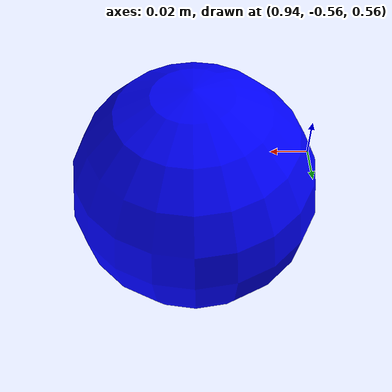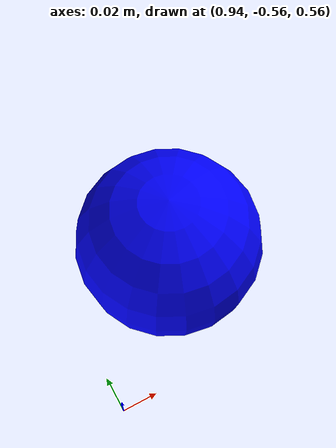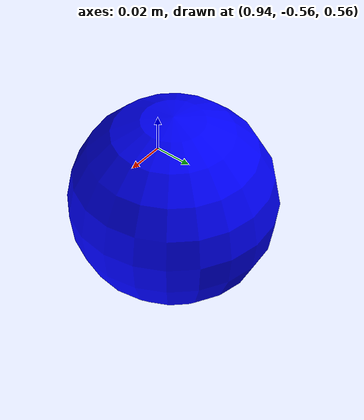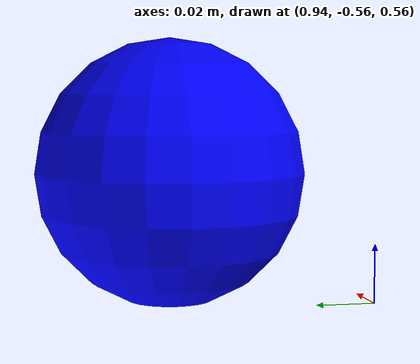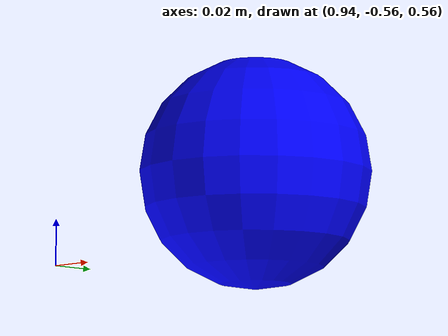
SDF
<?xml version="1.0" encoding="UTF-8"?>
<sdf version='1.9'>
  <model name='sphere'>
    <static>true</static>
    <pose>1 -0.5 0.6 0 0 0</pose>
    <link name='base'>
      <visual name='base_visual'>
        <geometry>
          <sphere>
            <radius>0.05</radius>
          </sphere>
        </geometry>
        <material>
          <diffuse>0 0 1 1</diffuse>
          <specular>0.4 0.4 0.4 1</specular>
        </material>
      </visual>
    </link>
  </model>
</sdf>
